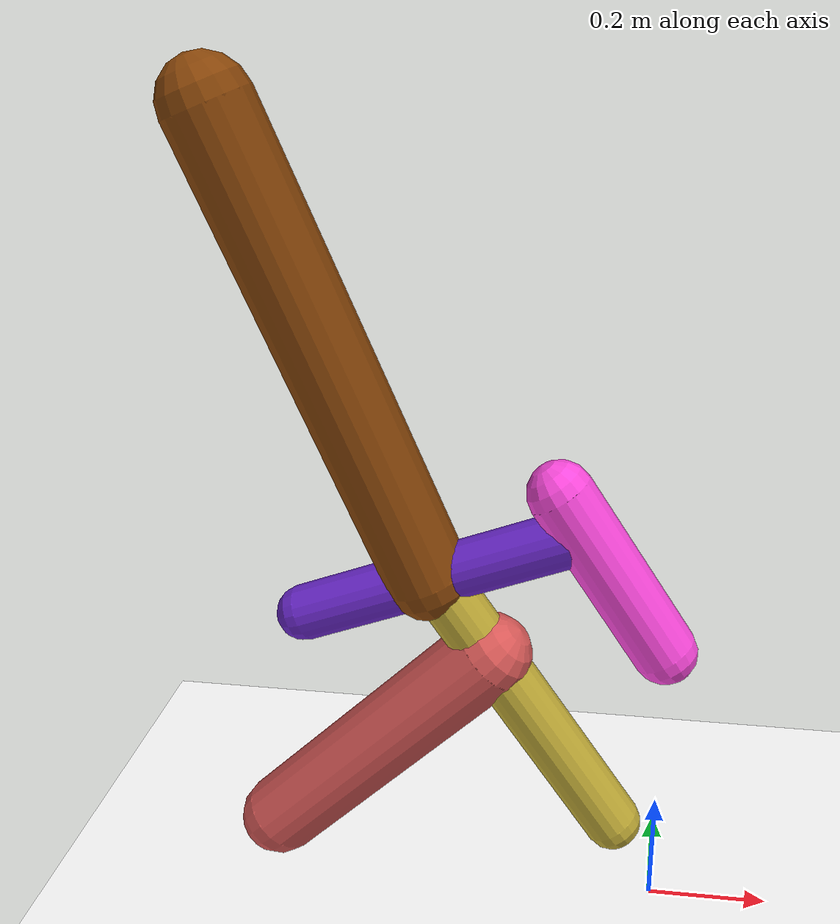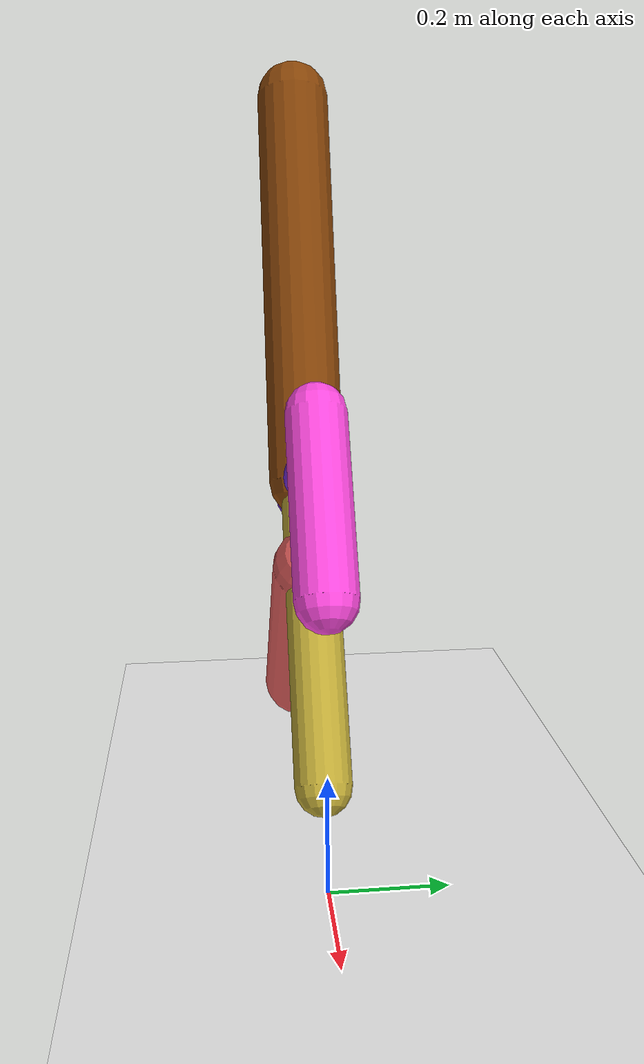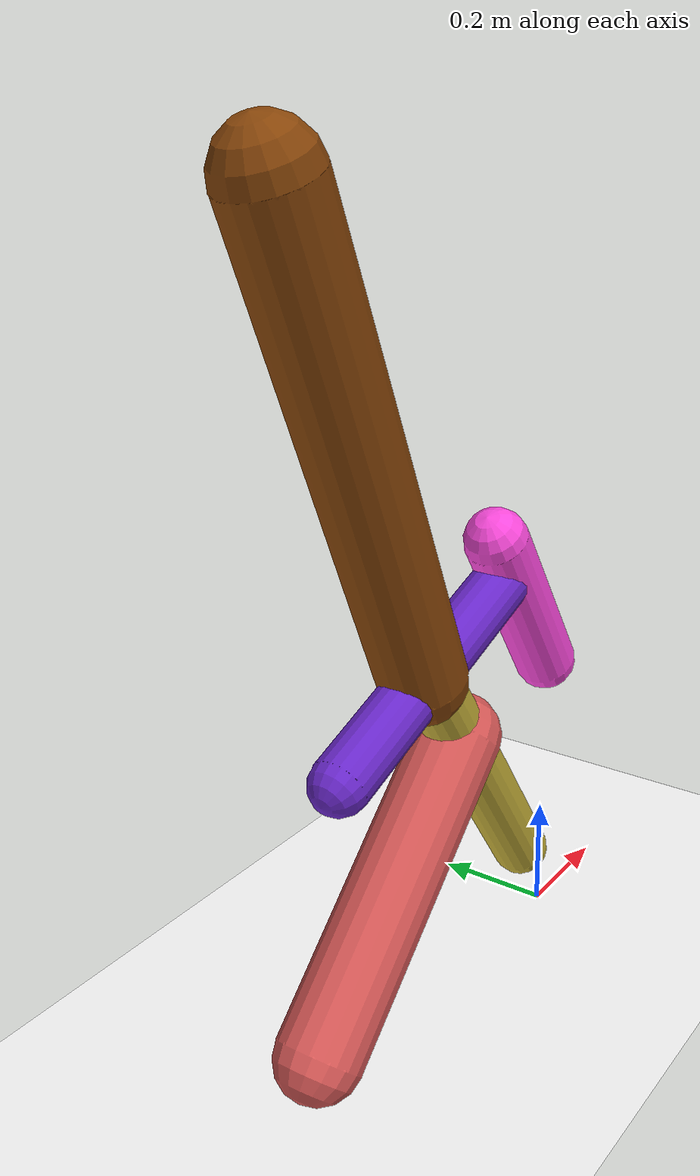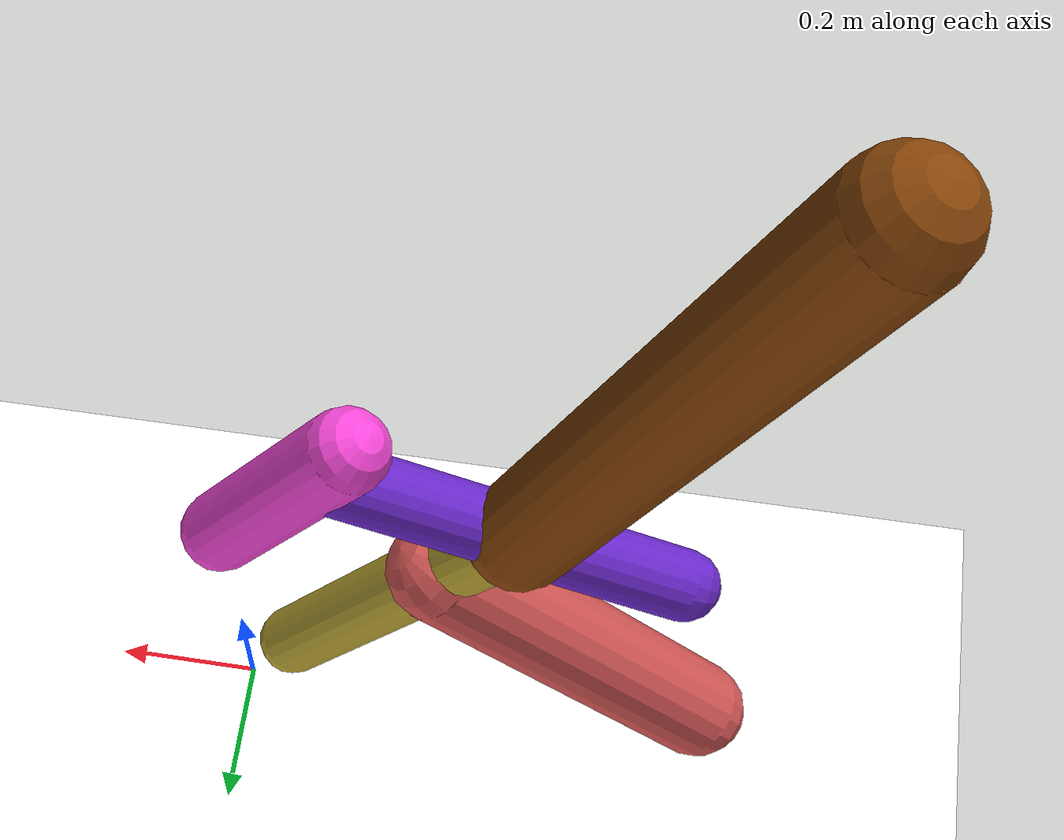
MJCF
<mujoco model="morphology">
  <option timestep="0.01"/>
  <default>
    <default class="/"/>
    <default class="0/"/>
    <default class="0/1/"/>
    <default class="0/1/2/"/>
    <default class="0/1/3/"/>
    <default class="0/1/3/4/"/>
  </default>
  <asset>
    <texture name="texplane" type="2d" builtin="checker" rgb1="0.10000000000000001 0.20000000000000001 0.29999999999999999" rgb2="0.20000000000000001 0.29999999999999999 0.40000000000000002" width="300" height="300"/>
    <material name="MatPlane" class="/" texture="texplane" texrepeat="20 20" specular="1" shininess="1" reflectance="0.5"/>
  </asset>
  <worldbody>
    <light name="//unnamed_light_0" class="/" directional="true" pos="0 0 1.5" dir="0 0 -1.3" cutoff="100" exponent="1" diffuse="1 1 1" specular="0.10000000000000001 0.10000000000000001 0.10000000000000001"/>
    <geom name="ground" class="/" type="plane" size="15 15 0.5" material="MatPlane" rgba="1 1 1 1"/>
    <site name="body" class="/" size="9.9999999999999995e-07 9.9999999999999995e-07 9.9999999999999995e-07" pos="0 0 0.49527517557144163"/>
    <body pos="0 0 0.49527517557144163" name="0/">
      <joint name="0/rootx/" class="/" type="slide" axis="1 0 0" limited="false" stiffness="0" armature="0" damping="0"/>
      <joint name="0/rootz/" class="/" type="slide" axis="0 0 1" limited="false" stiffness="0" armature="0" damping="0"/>
      <joint name="0/rooty/" class="/" type="hinge" axis="0 1 0" limited="false" stiffness="0" armature="0" damping="0"/>
      <geom name="0/geom" class="0/" type="capsule" contype="1" conaffinity="1" condim="3" size="0.05250223149462304" rgba="0.98497552930992449 0.28634750549516208 0.86531436416516283 1" friction="0.59999999999999998 0.10000000000000001 0.10000000000000001" fromto="0 0 0 -0.17190956391895273 0 0.26619717644368057"/>
      <site name="0/end0" class="0/" size="0.0050000000000000001" pos="-0.17190956391895273 0 0.26619717644368057"/>
      <site name="0/attach1" class="0/" size="9.9999999999999995e-07 9.9999999999999995e-07 9.9999999999999995e-07" pos="-0.12969051428707648 0 0.20082215280951246"/>
      <body pos="-0.12969051428707648 0 0.20082215280951246" name="0/1/">
        <joint name="0/1/joint/" class="0/" type="hinge" axis="0 1 0" limited="true" range="-33.983254555228058 33.983254555228058"/>
        <geom name="0/1/geom" class="0/1/" type="capsule" contype="1" conaffinity="1" condim="3" size="0.046183326109536918" rgba="0.41177231966919137 0.15448464615228796 0.79007425565807032 1" friction="0.59999999999999998 0.10000000000000001 0.10000000000000001" fromto="0 0 0 -0.45658010180584296 0 -0.17349340279793923"/>
        <site name="0/1/end1" class="0/1/" size="0.0050000000000000001" pos="-0.45658010180584296 0 -0.17349340279793923"/>
        <site name="0/1/attach2" class="0/1/" size="9.9999999999999995e-07 9.9999999999999995e-07 9.9999999999999995e-07" pos="-0.24886420853213134 0 -0.094564564250799926"/>
        <body pos="-0.24886420853213134 0 -0.094564564250799926" name="0/1/2/">
          <joint name="0/1/2/joint/" class="0/1/" type="hinge" axis="0 1 0" limited="true" range="-46.520959267158936 46.520959267158936"/>
          <geom name="0/1/2/geom" class="0/1/2/" type="capsule" contype="1" conaffinity="1" condim="3" size="0.069088665308309899" rgba="0.53161745543646766 0.27088456253639526 0.035374610573793319 1" friction="0.59999999999999998 0.10000000000000001 0.10000000000000001" fromto="0 0 0 -0.28763952469571513 0 0.71419647550824705"/>
          <site name="0/1/2/end2" class="0/1/2/" size="0.0050000000000000001" pos="-0.28763952469571513 0 0.71419647550824705"/>
        </body>
        <site name="0/1/attach3" class="0/1/" size="9.9999999999999995e-07 9.9999999999999995e-07 9.9999999999999995e-07" pos="-0.2405964744624372 0 -0.091422952709897393"/>
        <body pos="-0.2405964744624372 0 -0.091422952709897393" name="0/1/3/">
          <joint name="0/1/3/joint/" class="0/1/" type="hinge" axis="0 1 0" limited="true" range="-33.124500928999169 33.124500928999169"/>
          <geom name="0/1/3/geom" class="0/1/3/" type="capsule" contype="1" conaffinity="1" condim="3" size="0.048784052935768089" rgba="0.75529157881216347 0.66967522978730376 0.21477016006542804 1" friction="0.59999999999999998 0.10000000000000001 0.10000000000000001" fromto="0 0 0 0.29886852228125127 0 -0.45563313410494788"/>
          <site name="0/1/3/end3" class="0/1/3/" size="0.0050000000000000001" pos="0.29886852228125127 0 -0.45563313410494788"/>
          <site name="0/1/3/attach4" class="0/1/3/" size="9.9999999999999995e-07 9.9999999999999995e-07 9.9999999999999995e-07" pos="0.089656902039279646 0 -0.13668436862633068"/>
          <body pos="0.089656902039279646 0 -0.13668436862633068" name="0/1/3/4/">
            <joint name="0/1/3/4/joint/" class="0/1/3/" type="hinge" axis="0 1 0" limited="true" range="-46.557835800441545 46.557835800441545"/>
            <geom name="0/1/3/4/geom" class="0/1/3/4/" type="capsule" contype="1" conaffinity="1" condim="3" size="0.069634297960954661" rgba="0.84471517427805143 0.34922218253061665 0.34285774404470148 1" friction="0.59999999999999998 0.10000000000000001 0.10000000000000001" fromto="0 0 0 -0.37985639235101865 0 -0.36799000229843248"/>
            <site name="0/1/3/4/end4" class="0/1/3/4/" size="0.0050000000000000001" pos="-0.37985639235101865 0 -0.36799000229843248"/>
          </body>
        </body>
      </body>
      <camera name="0/side" class="0/" mode="trackcom" pos="0.40000000000000002 -4 0.20000000000000001" quat="0.70699999999999996 0.70699999999999996 0 0"/>
    </body>
  </worldbody>
  <actuator>
    <motor name="0/1/motor" class="0/1/" ctrllimited="true" ctrlrange="-1 1" gear="59" joint="0/1/joint/"/>
    <motor name="0/1/2/motor" class="0/1/2/" ctrllimited="true" ctrlrange="-1 1" gear="55" joint="0/1/2/joint/"/>
    <motor name="0/1/3/motor" class="0/1/3/" ctrllimited="true" ctrlrange="-1 1" gear="84" joint="0/1/3/joint/"/>
    <motor name="0/1/3/4/motor" class="0/1/3/4/" ctrllimited="true" ctrlrange="-1 1" gear="71" joint="0/1/3/4/joint/"/>
  </actuator>
  <sensor>
    <subtreelinvel name="velocity" body="0/"/>
  </sensor>
</mujoco>
